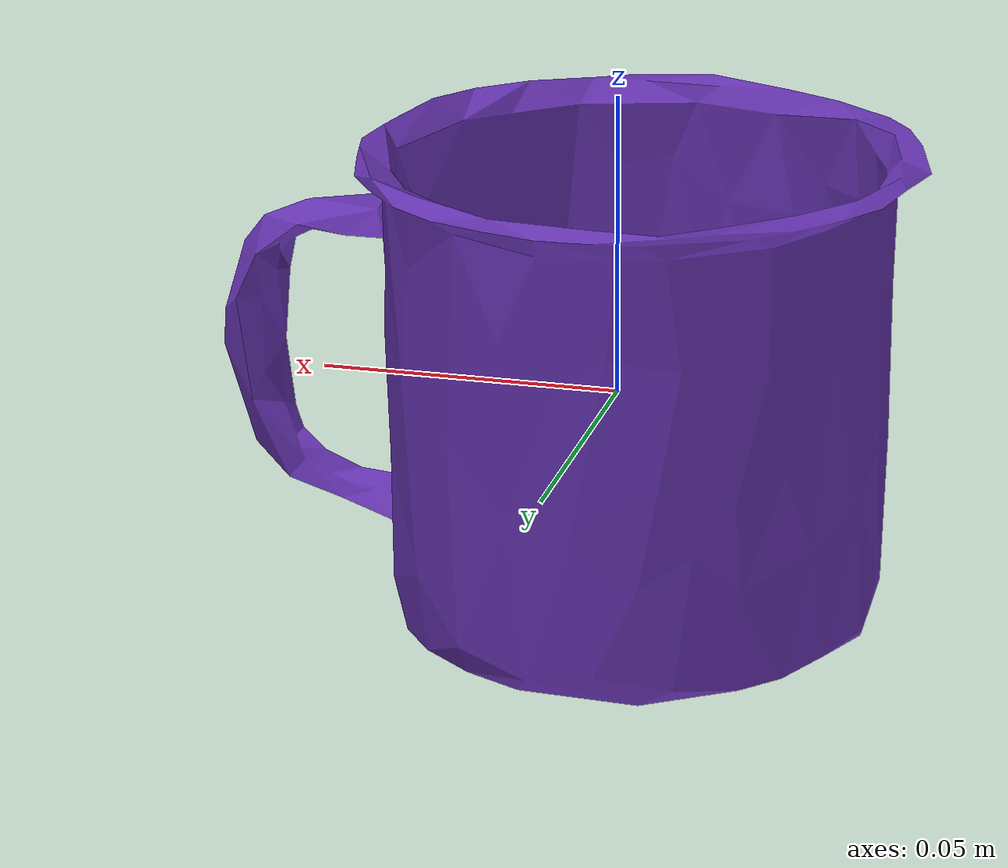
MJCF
<mujoco model="top_watertight_tiny">

  <asset>
    <mesh file="top_watertight_tiny.obj"/>
    <mesh file="top_watertight_tiny_collision_0.obj"/>
    <mesh file="top_watertight_tiny_collision_1.obj"/>
    <mesh file="top_watertight_tiny_collision_2.obj"/>
    <mesh file="top_watertight_tiny_collision_3.obj"/>
    <mesh file="top_watertight_tiny_collision_4.obj"/>
    <mesh file="top_watertight_tiny_collision_5.obj"/>
    <mesh file="top_watertight_tiny_collision_6.obj"/>
    <mesh file="top_watertight_tiny_collision_7.obj"/>
    <mesh file="top_watertight_tiny_collision_8.obj"/>
    <mesh file="top_watertight_tiny_collision_9.obj"/>
    <mesh file="top_watertight_tiny_collision_10.obj"/>
    <mesh file="top_watertight_tiny_collision_11.obj"/>
    <mesh file="top_watertight_tiny_collision_12.obj"/>
    <mesh file="top_watertight_tiny_collision_13.obj"/>
    <mesh file="top_watertight_tiny_collision_14.obj"/>
    <mesh file="top_watertight_tiny_collision_15.obj"/>
    <mesh file="top_watertight_tiny_collision_16.obj"/>
    <mesh file="top_watertight_tiny_collision_17.obj"/>
    <mesh file="top_watertight_tiny_collision_18.obj"/>
    <mesh file="top_watertight_tiny_collision_19.obj"/>
    <mesh file="top_watertight_tiny_collision_20.obj"/>
    <mesh file="top_watertight_tiny_collision_21.obj"/>
    <mesh file="top_watertight_tiny_collision_22.obj"/>
    <mesh file="top_watertight_tiny_collision_23.obj"/>
    <mesh file="top_watertight_tiny_collision_24.obj"/>
    <mesh file="top_watertight_tiny_collision_25.obj"/>
    <mesh file="top_watertight_tiny_collision_26.obj"/>
    <mesh file="top_watertight_tiny_collision_27.obj"/>
    <mesh file="top_watertight_tiny_collision_28.obj"/>
    <mesh file="top_watertight_tiny_collision_29.obj"/>
    <mesh file="top_watertight_tiny_collision_30.obj"/>
    <mesh file="top_watertight_tiny_collision_31.obj"/>
    <mesh file="top_watertight_tiny_collision_32.obj"/>
    <mesh file="top_watertight_tiny_collision_33.obj"/>
    <mesh file="top_watertight_tiny_collision_34.obj"/>
    <mesh file="top_watertight_tiny_collision_35.obj"/>
    <mesh file="top_watertight_tiny_collision_36.obj"/>
    <mesh file="top_watertight_tiny_collision_37.obj"/>
    <mesh file="top_watertight_tiny_collision_38.obj"/>
    <mesh file="top_watertight_tiny_collision_39.obj"/>
    <mesh file="top_watertight_tiny_collision_40.obj"/>
    <mesh file="top_watertight_tiny_collision_41.obj"/>
    <mesh file="top_watertight_tiny_collision_42.obj"/>
    <mesh file="top_watertight_tiny_collision_43.obj"/>
    <mesh file="top_watertight_tiny_collision_44.obj"/>
    <mesh file="top_watertight_tiny_collision_45.obj"/>
    <mesh file="top_watertight_tiny_collision_46.obj"/>
    <mesh file="top_watertight_tiny_collision_47.obj"/>
    <mesh file="top_watertight_tiny_collision_48.obj"/>
    <mesh file="top_watertight_tiny_collision_49.obj"/>
    <mesh file="top_watertight_tiny_collision_50.obj"/>
    <mesh file="top_watertight_tiny_collision_51.obj"/>
    <mesh file="top_watertight_tiny_collision_52.obj"/>
    <mesh file="top_watertight_tiny_collision_53.obj"/>
    <mesh file="top_watertight_tiny_collision_54.obj"/>
    <mesh file="top_watertight_tiny_collision_55.obj"/>
    <mesh file="top_watertight_tiny_collision_56.obj"/>
    <mesh file="top_watertight_tiny_collision_57.obj"/>
    <mesh file="top_watertight_tiny_collision_58.obj"/>
    <mesh file="top_watertight_tiny_collision_59.obj"/>
    <mesh file="top_watertight_tiny_collision_60.obj"/>
    <mesh file="top_watertight_tiny_collision_61.obj"/>
    <mesh file="top_watertight_tiny_collision_62.obj"/>
    <mesh file="top_watertight_tiny_collision_63.obj"/>
    <mesh file="top_watertight_tiny_collision_64.obj"/>
    <mesh file="top_watertight_tiny_collision_65.obj"/>
    <mesh file="top_watertight_tiny_collision_66.obj"/>
    <mesh file="top_watertight_tiny_collision_67.obj"/>
  </asset>
  <worldbody>
    <body name="top_watertight_tiny">
      <freejoint/>
      <geom solimp="0.90 0.95 0.001" solref="0.02 1.0" density="100" friction="0.95 0.4 0.3" rgba="0.4 0.2 0.7 1" mesh="top_watertight_tiny" group="2" type="mesh" contype="0" conaffinity="0"/>
      <geom solimp="0.90 0.95 0.001" solref="0.02 1.0" density="100" friction="0.95 0.4 0.3" mesh="top_watertight_tiny_collision_0" rgba="0.5136764862173565 0.5033649746151304 0.8592316405707 1" group="3" type="mesh"/>
      <geom solimp="0.90 0.95 0.001" solref="0.02 1.0" density="100" friction="0.95 0.4 0.3" mesh="top_watertight_tiny_collision_1" rgba="0.7393898841759902 0.30921996877096336 0.5911215526650817 1" group="3" type="mesh"/>
      <geom solimp="0.90 0.95 0.001" solref="0.02 1.0" density="100" friction="0.95 0.4 0.3" mesh="top_watertight_tiny_collision_2" rgba="0.5904574319572172 0.9349464159639316 0.0027505061019053034 1" group="3" type="mesh"/>
      <geom solimp="0.90 0.95 0.001" solref="0.02 1.0" density="100" friction="0.95 0.4 0.3" mesh="top_watertight_tiny_collision_3" rgba="0.7783735038908216 0.6049606839737431 0.6550879426556451 1" group="3" type="mesh"/>
      <geom solimp="0.90 0.95 0.001" solref="0.02 1.0" density="100" friction="0.95 0.4 0.3" mesh="top_watertight_tiny_collision_4" rgba="0.20135687524601997 0.006782085917529601 0.6691109077452747 1" group="3" type="mesh"/>
      <geom solimp="0.90 0.95 0.001" solref="0.02 1.0" density="100" friction="0.95 0.4 0.3" mesh="top_watertight_tiny_collision_5" rgba="0.8840726765530409 0.09490707613918914 0.662012074756426 1" group="3" type="mesh"/>
      <geom solimp="0.90 0.95 0.001" solref="0.02 1.0" density="100" friction="0.95 0.4 0.3" mesh="top_watertight_tiny_collision_6" rgba="0.06298339487356197 0.3935931305278516 0.7005123100511669 1" group="3" type="mesh"/>
      <geom solimp="0.90 0.95 0.001" solref="0.02 1.0" density="100" friction="0.95 0.4 0.3" mesh="top_watertight_tiny_collision_7" rgba="0.27846007899484293 0.9044527355619186 0.1464670292181499 1" group="3" type="mesh"/>
      <geom solimp="0.90 0.95 0.001" solref="0.02 1.0" density="100" friction="0.95 0.4 0.3" mesh="top_watertight_tiny_collision_8" rgba="0.6260066625488531 0.1795701245939485 0.28444000921882784 1" group="3" type="mesh"/>
      <geom solimp="0.90 0.95 0.001" solref="0.02 1.0" density="100" friction="0.95 0.4 0.3" mesh="top_watertight_tiny_collision_9" rgba="0.8804436287561592 0.6702746899140464 0.6457071443088948 1" group="3" type="mesh"/>
      <geom solimp="0.90 0.95 0.001" solref="0.02 1.0" density="100" friction="0.95 0.4 0.3" mesh="top_watertight_tiny_collision_10" rgba="0.24541190772669896 0.9184613762195973 0.8139094619025724 1" group="3" type="mesh"/>
      <geom solimp="0.90 0.95 0.001" solref="0.02 1.0" density="100" friction="0.95 0.4 0.3" mesh="top_watertight_tiny_collision_11" rgba="0.958195486233689 0.2625731312195755 0.01320135436858283 1" group="3" type="mesh"/>
      <geom solimp="0.90 0.95 0.001" solref="0.02 1.0" density="100" friction="0.95 0.4 0.3" mesh="top_watertight_tiny_collision_12" rgba="0.36603756536649623 0.24768395344473604 0.9525489250845988 1" group="3" type="mesh"/>
      <geom solimp="0.90 0.95 0.001" solref="0.02 1.0" density="100" friction="0.95 0.4 0.3" mesh="top_watertight_tiny_collision_13" rgba="0.3696951664598287 0.8677918835415679 0.6828609710636239 1" group="3" type="mesh"/>
      <geom solimp="0.90 0.95 0.001" solref="0.02 1.0" density="100" friction="0.95 0.4 0.3" mesh="top_watertight_tiny_collision_14" rgba="0.4603694337273533 0.002679477352797055 0.3757702519383861 1" group="3" type="mesh"/>
      <geom solimp="0.90 0.95 0.001" solref="0.02 1.0" density="100" friction="0.95 0.4 0.3" mesh="top_watertight_tiny_collision_15" rgba="0.49346938810765917 0.16302044881085487 0.14807017340813255 1" group="3" type="mesh"/>
      <geom solimp="0.90 0.95 0.001" solref="0.02 1.0" density="100" friction="0.95 0.4 0.3" mesh="top_watertight_tiny_collision_16" rgba="0.6682921696183832 0.689892944619446 0.346044301343314 1" group="3" type="mesh"/>
      <geom solimp="0.90 0.95 0.001" solref="0.02 1.0" density="100" friction="0.95 0.4 0.3" mesh="top_watertight_tiny_collision_17" rgba="0.0733075719158871 0.8148396735941869 0.8560553107367439 1" group="3" type="mesh"/>
      <geom solimp="0.90 0.95 0.001" solref="0.02 1.0" density="100" friction="0.95 0.4 0.3" mesh="top_watertight_tiny_collision_18" rgba="0.6419781689102708 0.766243138887179 0.6380281010326293 1" group="3" type="mesh"/>
      <geom solimp="0.90 0.95 0.001" solref="0.02 1.0" density="100" friction="0.95 0.4 0.3" mesh="top_watertight_tiny_collision_19" rgba="0.5191758264676397 0.6551150172293706 0.2757529696239116 1" group="3" type="mesh"/>
      <geom solimp="0.90 0.95 0.001" solref="0.02 1.0" density="100" friction="0.95 0.4 0.3" mesh="top_watertight_tiny_collision_20" rgba="0.8594083547037246 0.7038492927779231 0.836789113231805 1" group="3" type="mesh"/>
      <geom solimp="0.90 0.95 0.001" solref="0.02 1.0" density="100" friction="0.95 0.4 0.3" mesh="top_watertight_tiny_collision_21" rgba="0.22671670164427726 0.5646847228997018 0.8537170016405163 1" group="3" type="mesh"/>
      <geom solimp="0.90 0.95 0.001" solref="0.02 1.0" density="100" friction="0.95 0.4 0.3" mesh="top_watertight_tiny_collision_22" rgba="0.06448000019404265 0.5753238552001203 0.3036187030130286 1" group="3" type="mesh"/>
      <geom solimp="0.90 0.95 0.001" solref="0.02 1.0" density="100" friction="0.95 0.4 0.3" mesh="top_watertight_tiny_collision_23" rgba="0.19548781293972228 0.9950578567184408 0.3054683006173128 1" group="3" type="mesh"/>
      <geom solimp="0.90 0.95 0.001" solref="0.02 1.0" density="100" friction="0.95 0.4 0.3" mesh="top_watertight_tiny_collision_24" rgba="0.6479798578406387 0.22242721021007406 0.6105351129707457 1" group="3" type="mesh"/>
      <geom solimp="0.90 0.95 0.001" solref="0.02 1.0" density="100" friction="0.95 0.4 0.3" mesh="top_watertight_tiny_collision_25" rgba="0.027598682235667638 0.8743285330330566 0.29323089601881824 1" group="3" type="mesh"/>
      <geom solimp="0.90 0.95 0.001" solref="0.02 1.0" density="100" friction="0.95 0.4 0.3" mesh="top_watertight_tiny_collision_26" rgba="0.4623139563072556 0.9003922815146818 0.5243773234304684 1" group="3" type="mesh"/>
      <geom solimp="0.90 0.95 0.001" solref="0.02 1.0" density="100" friction="0.95 0.4 0.3" mesh="top_watertight_tiny_collision_27" rgba="0.43741953263842936 0.6970907833890392 0.5980596957860079 1" group="3" type="mesh"/>
      <geom solimp="0.90 0.95 0.001" solref="0.02 1.0" density="100" friction="0.95 0.4 0.3" mesh="top_watertight_tiny_collision_28" rgba="0.6018496426357071 0.5703326992590698 0.8904218021644404 1" group="3" type="mesh"/>
      <geom solimp="0.90 0.95 0.001" solref="0.02 1.0" density="100" friction="0.95 0.4 0.3" mesh="top_watertight_tiny_collision_29" rgba="0.4558994434558843 0.8677271690366353 0.6651195606531239 1" group="3" type="mesh"/>
      <geom solimp="0.90 0.95 0.001" solref="0.02 1.0" density="100" friction="0.95 0.4 0.3" mesh="top_watertight_tiny_collision_30" rgba="0.09626355849805202 0.19679520612739965 0.7909076387319316 1" group="3" type="mesh"/>
      <geom solimp="0.90 0.95 0.001" solref="0.02 1.0" density="100" friction="0.95 0.4 0.3" mesh="top_watertight_tiny_collision_31" rgba="0.6979738491435385 0.25405970881774886 0.6359850197677054 1" group="3" type="mesh"/>
      <geom solimp="0.90 0.95 0.001" solref="0.02 1.0" density="100" friction="0.95 0.4 0.3" mesh="top_watertight_tiny_collision_32" rgba="0.673529300188401 0.31874927206091686 0.6599857215613876 1" group="3" type="mesh"/>
      <geom solimp="0.90 0.95 0.001" solref="0.02 1.0" density="100" friction="0.95 0.4 0.3" mesh="top_watertight_tiny_collision_33" rgba="0.877957478363284 0.10198653925349555 0.945759420424596 1" group="3" type="mesh"/>
      <geom solimp="0.90 0.95 0.001" solref="0.02 1.0" density="100" friction="0.95 0.4 0.3" mesh="top_watertight_tiny_collision_34" rgba="0.09852301285093878 0.48650341806496433 0.8530607868790633 1" group="3" type="mesh"/>
      <geom solimp="0.90 0.95 0.001" solref="0.02 1.0" density="100" friction="0.95 0.4 0.3" mesh="top_watertight_tiny_collision_35" rgba="0.6545572976482252 0.34713772792635833 0.9007040352626641 1" group="3" type="mesh"/>
      <geom solimp="0.90 0.95 0.001" solref="0.02 1.0" density="100" friction="0.95 0.4 0.3" mesh="top_watertight_tiny_collision_36" rgba="0.5778161766967024 0.045100307433008746 0.6360338981819514 1" group="3" type="mesh"/>
      <geom solimp="0.90 0.95 0.001" solref="0.02 1.0" density="100" friction="0.95 0.4 0.3" mesh="top_watertight_tiny_collision_37" rgba="0.8731045704423188 0.21172924917472424 0.2698086910666426 1" group="3" type="mesh"/>
      <geom solimp="0.90 0.95 0.001" solref="0.02 1.0" density="100" friction="0.95 0.4 0.3" mesh="top_watertight_tiny_collision_38" rgba="0.1691769109735185 0.23559544827880408 0.2956660605774343 1" group="3" type="mesh"/>
      <geom solimp="0.90 0.95 0.001" solref="0.02 1.0" density="100" friction="0.95 0.4 0.3" mesh="top_watertight_tiny_collision_39" rgba="0.15628560599596797 0.6470722207586571 0.5578720088964104 1" group="3" type="mesh"/>
      <geom solimp="0.90 0.95 0.001" solref="0.02 1.0" density="100" friction="0.95 0.4 0.3" mesh="top_watertight_tiny_collision_40" rgba="0.6610392654973863 0.18456390017503332 0.8833386275725877 1" group="3" type="mesh"/>
      <geom solimp="0.90 0.95 0.001" solref="0.02 1.0" density="100" friction="0.95 0.4 0.3" mesh="top_watertight_tiny_collision_41" rgba="0.8458370267858121 0.27501005918671395 0.20019234603004887 1" group="3" type="mesh"/>
      <geom solimp="0.90 0.95 0.001" solref="0.02 1.0" density="100" friction="0.95 0.4 0.3" mesh="top_watertight_tiny_collision_42" rgba="0.7461262183845347 0.3051384322407351 0.2431590724111401 1" group="3" type="mesh"/>
      <geom solimp="0.90 0.95 0.001" solref="0.02 1.0" density="100" friction="0.95 0.4 0.3" mesh="top_watertight_tiny_collision_43" rgba="0.653440392493733 0.9200300660292022 0.9546025250167419 1" group="3" type="mesh"/>
      <geom solimp="0.90 0.95 0.001" solref="0.02 1.0" density="100" friction="0.95 0.4 0.3" mesh="top_watertight_tiny_collision_44" rgba="0.2957627802019297 0.40572749286523735 0.3035932140086621 1" group="3" type="mesh"/>
      <geom solimp="0.90 0.95 0.001" solref="0.02 1.0" density="100" friction="0.95 0.4 0.3" mesh="top_watertight_tiny_collision_45" rgba="0.6905146353342995 0.03427314270064408 0.28463597763604465 1" group="3" type="mesh"/>
      <geom solimp="0.90 0.95 0.001" solref="0.02 1.0" density="100" friction="0.95 0.4 0.3" mesh="top_watertight_tiny_collision_46" rgba="0.2978237198010264 0.7823966142758569 0.3736409726824219 1" group="3" type="mesh"/>
      <geom solimp="0.90 0.95 0.001" solref="0.02 1.0" density="100" friction="0.95 0.4 0.3" mesh="top_watertight_tiny_collision_47" rgba="0.578362774379996 0.4843428787866384 0.30454143981306325 1" group="3" type="mesh"/>
      <geom solimp="0.90 0.95 0.001" solref="0.02 1.0" density="100" friction="0.95 0.4 0.3" mesh="top_watertight_tiny_collision_48" rgba="0.7036285696465532 0.5450380342339285 0.1457002449789755 1" group="3" type="mesh"/>
      <geom solimp="0.90 0.95 0.001" solref="0.02 1.0" density="100" friction="0.95 0.4 0.3" mesh="top_watertight_tiny_collision_49" rgba="0.6251922708361201 0.6692463782152226 0.80037828365549 1" group="3" type="mesh"/>
      <geom solimp="0.90 0.95 0.001" solref="0.02 1.0" density="100" friction="0.95 0.4 0.3" mesh="top_watertight_tiny_collision_50" rgba="0.23539447259567747 0.3263339034686179 0.7795401905784485 1" group="3" type="mesh"/>
      <geom solimp="0.90 0.95 0.001" solref="0.02 1.0" density="100" friction="0.95 0.4 0.3" mesh="top_watertight_tiny_collision_51" rgba="0.3907460756569465 0.22775927613814495 0.4079916794276227 1" group="3" type="mesh"/>
      <geom solimp="0.90 0.95 0.001" solref="0.02 1.0" density="100" friction="0.95 0.4 0.3" mesh="top_watertight_tiny_collision_52" rgba="0.7287423423904046 0.3928342186834055 0.13922730397176108 1" group="3" type="mesh"/>
      <geom solimp="0.90 0.95 0.001" solref="0.02 1.0" density="100" friction="0.95 0.4 0.3" mesh="top_watertight_tiny_collision_53" rgba="0.17322290693237885 0.6605218831243841 0.8194056747155054 1" group="3" type="mesh"/>
      <geom solimp="0.90 0.95 0.001" solref="0.02 1.0" density="100" friction="0.95 0.4 0.3" mesh="top_watertight_tiny_collision_54" rgba="0.8060648810837764 0.073982945601333 0.39294898160083636 1" group="3" type="mesh"/>
      <geom solimp="0.90 0.95 0.001" solref="0.02 1.0" density="100" friction="0.95 0.4 0.3" mesh="top_watertight_tiny_collision_55" rgba="0.07043806253673146 0.02939441777697127 0.2826985555407995 1" group="3" type="mesh"/>
      <geom solimp="0.90 0.95 0.001" solref="0.02 1.0" density="100" friction="0.95 0.4 0.3" mesh="top_watertight_tiny_collision_56" rgba="0.5667541411569657 0.22660097006857183 0.6851068469315786 1" group="3" type="mesh"/>
      <geom solimp="0.90 0.95 0.001" solref="0.02 1.0" density="100" friction="0.95 0.4 0.3" mesh="top_watertight_tiny_collision_57" rgba="0.6368901438211594 0.7824787081324401 0.3438645413693152 1" group="3" type="mesh"/>
      <geom solimp="0.90 0.95 0.001" solref="0.02 1.0" density="100" friction="0.95 0.4 0.3" mesh="top_watertight_tiny_collision_58" rgba="0.3859191352599861 0.5493258579398101 0.415174156847017 1" group="3" type="mesh"/>
      <geom solimp="0.90 0.95 0.001" solref="0.02 1.0" density="100" friction="0.95 0.4 0.3" mesh="top_watertight_tiny_collision_59" rgba="0.9872680591973462 0.5582097642219472 0.9210564867193332 1" group="3" type="mesh"/>
      <geom solimp="0.90 0.95 0.001" solref="0.02 1.0" density="100" friction="0.95 0.4 0.3" mesh="top_watertight_tiny_collision_60" rgba="0.14436310262376273 0.7226705670825662 0.9366212091377687 1" group="3" type="mesh"/>
      <geom solimp="0.90 0.95 0.001" solref="0.02 1.0" density="100" friction="0.95 0.4 0.3" mesh="top_watertight_tiny_collision_61" rgba="0.8441544070976861 0.5267263572107467 0.30868782812061046 1" group="3" type="mesh"/>
      <geom solimp="0.90 0.95 0.001" solref="0.02 1.0" density="100" friction="0.95 0.4 0.3" mesh="top_watertight_tiny_collision_62" rgba="0.8995591255204785 0.6378774431351958 0.29958928291783715 1" group="3" type="mesh"/>
      <geom solimp="0.90 0.95 0.001" solref="0.02 1.0" density="100" friction="0.95 0.4 0.3" mesh="top_watertight_tiny_collision_63" rgba="0.1352749046281544 0.37439375432471034 0.892125904075082 1" group="3" type="mesh"/>
      <geom solimp="0.90 0.95 0.001" solref="0.02 1.0" density="100" friction="0.95 0.4 0.3" mesh="top_watertight_tiny_collision_64" rgba="0.09451010650991709 0.612005131026085 0.1417638476318417 1" group="3" type="mesh"/>
      <geom solimp="0.90 0.95 0.001" solref="0.02 1.0" density="100" friction="0.95 0.4 0.3" mesh="top_watertight_tiny_collision_65" rgba="0.6328771094229032 0.395413355524763 0.2264915001895571 1" group="3" type="mesh"/>
      <geom solimp="0.90 0.95 0.001" solref="0.02 1.0" density="100" friction="0.95 0.4 0.3" mesh="top_watertight_tiny_collision_66" rgba="0.6566208087732253 0.9140533642298091 0.9392800534434361 1" group="3" type="mesh"/>
      <geom solimp="0.90 0.95 0.001" solref="0.02 1.0" density="100" friction="0.95 0.4 0.3" mesh="top_watertight_tiny_collision_67" rgba="0.8886939066148786 0.9783200981178493 0.05060483814053296 1" group="3" type="mesh"/>
    </body>
  </worldbody>
</mujoco>
